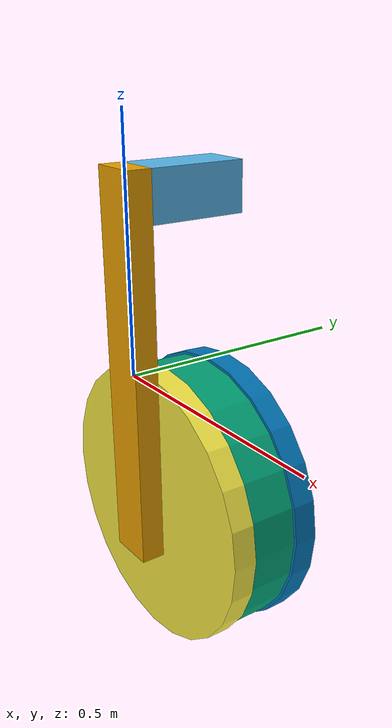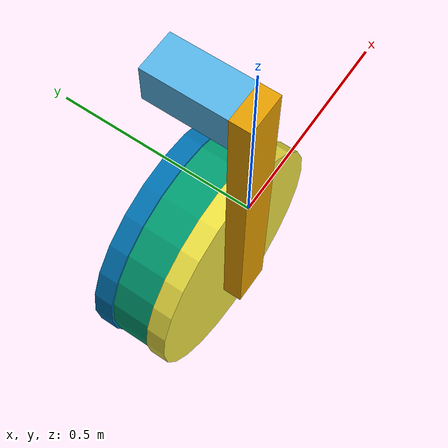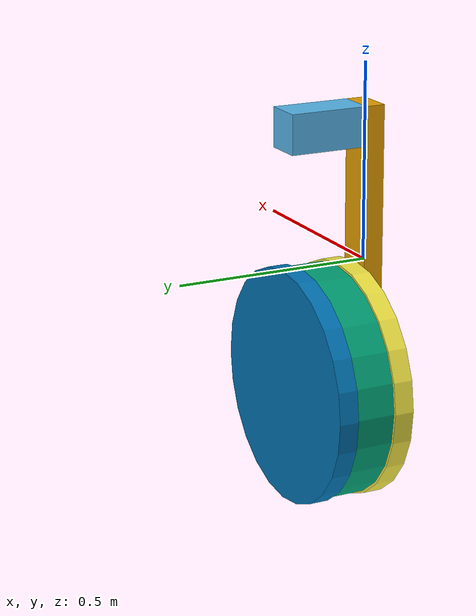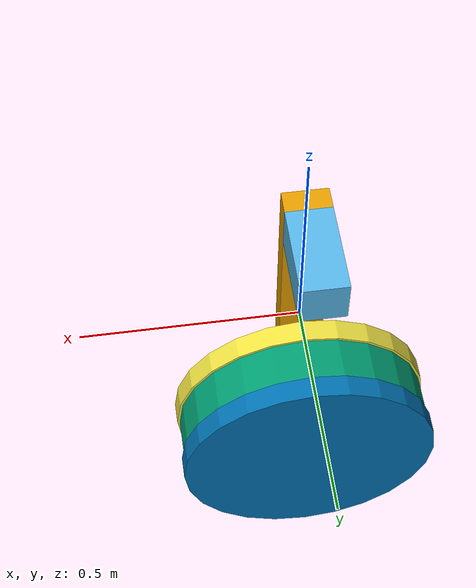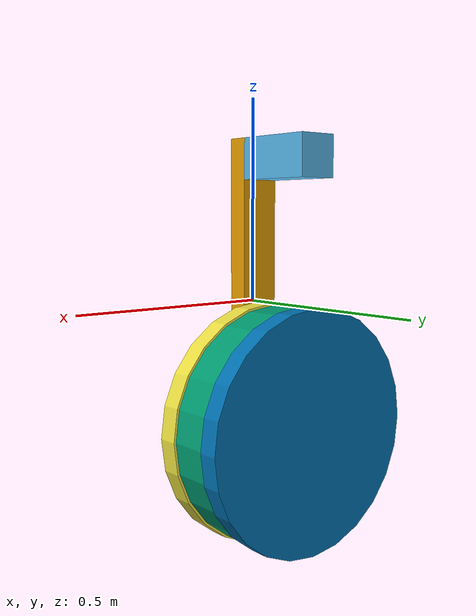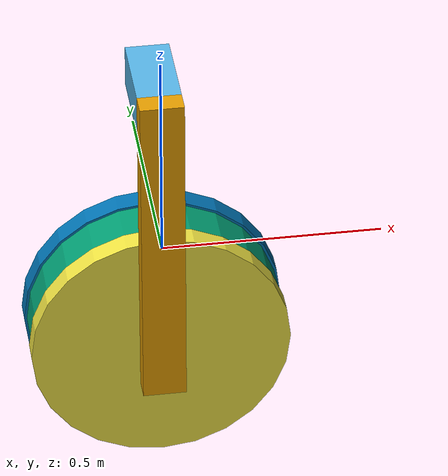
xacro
<robot name="test_robot" xmlns:xacro="http://ros.org/wiki/xacro">
  <xacro:property name="side" value="0.05" />
  <xacro:property name="x" value="0.1" />
  <xacro:property name="height" value="0.8" />
  <xacro:property name="wheel_l" value="0.05" />
  <xacro:property name="wheel_r" value="0.3" />

  <link name="body_link">
    <visual>
      <geometry>
        <box size="${x} ${side} ${height}"/>
      </geometry>
    </visual>
  </link>
  <link name="upper_body_link">
    <visual>
      <geometry>
        <box size="${x} ${4*wheel_l} ${x}"/>
      </geometry>
    </visual>
  </link>
  <link name="middle_wheel">
    <visual>
      <geometry>
        <cylinder length="${wheel_l*2}" radius="${wheel_r*0.98}"/>
      </geometry>
    </visual>
  </link>
  <link name="left_wheel">
    <visual>
      <geometry>
        <cylinder length="${wheel_l}" radius="${wheel_r}"/>
      </geometry>
    </visual>
  </link>
  <link name="right_wheel">
    <visual>
      <geometry>
        <cylinder length="${wheel_l}" radius="${wheel_r}"/>
      </geometry>
    </visual>
  </link>

  <joint name="upper_body_joint" type="fixed">
    <axis xyz="0 1 0"/>
    <parent link="body_link"/>
    <child link="upper_body_link"/>
    <origin rpy="0 0 0" xyz="0  ${0.5*side+2*wheel_l} ${0.5*(height-x)}"/>
  </joint>
  <joint name="body_joint" type="continuous">
    <axis xyz="0 0 1"/>
    <parent link="body_link"/>
    <child link="middle_wheel"/>
    <origin rpy="-1.5708 0 0" xyz="0. ${2*wheel_l+0.5*side} ${-0.5*height+x}"/>
  </joint>
  <joint name="left_wheel_joint" type="continuous">
    <axis xyz="0 0 1"/>
    <parent link="middle_wheel"/>
    <child link="left_wheel"/>
    <origin rpy="0 0 0" xyz="0. 0 ${-1.5*wheel_l}"/>
  </joint>
  <joint name="right_wheel_joint" type="continuous">
    <axis xyz="0 0 1"/>
    <parent link="middle_wheel"/>
    <child link="right_wheel"/>
    <origin rpy="0 0 0" xyz="0. 0 ${1.5*wheel_l}"/>
  </joint>

</robot>
